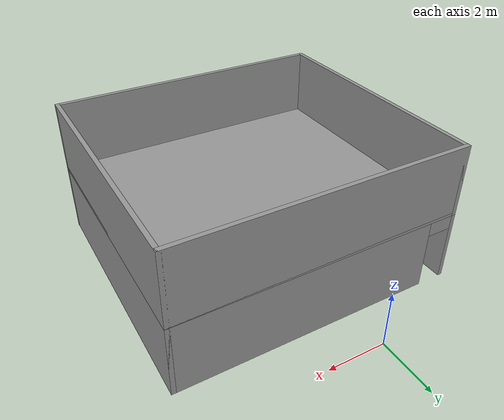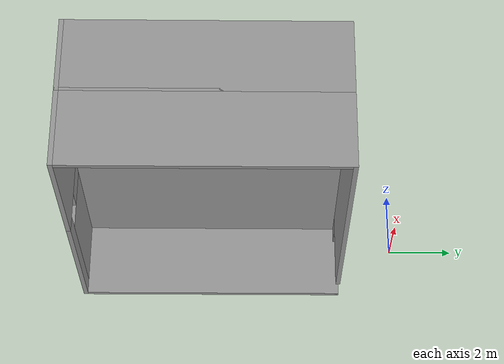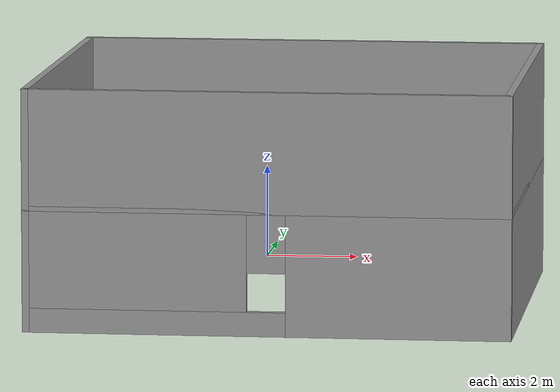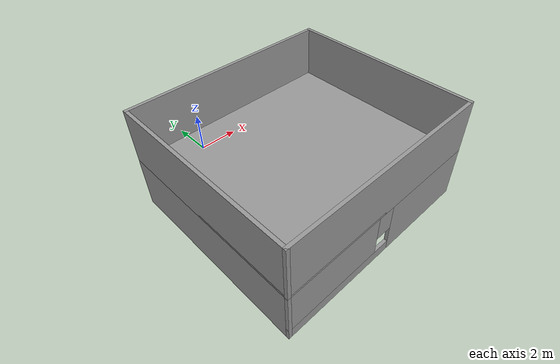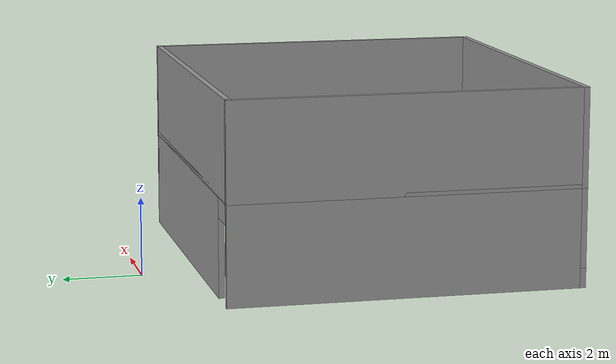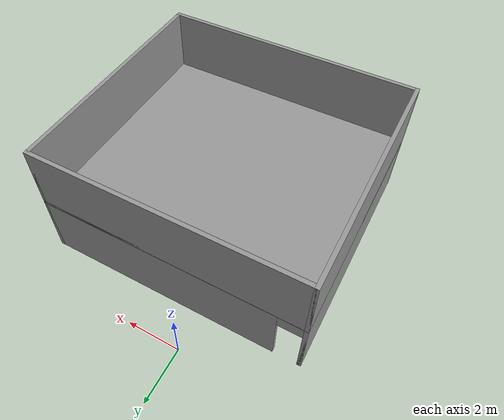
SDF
<sdf version='1.7'>
  <model name='Initial_2D'>
    <pose>1.215 -5.2225 0 0 -0 0</pose>
    <link name='Floor_0'>
      <collision name='Floor_0_Collision'>
        <geometry>
          <box>
            <size>10 9 0.1</size>
          </box>
        </geometry>
        <pose>0 0 0.05 0 -0 0</pose>
      </collision>
      <visual name='Floor_0_Visual'>
        <pose>0 0 0.05 0 -0 0</pose>
        <geometry>
          <box>
            <size>10 9 0.1</size>
          </box>
        </geometry>
        <material>
          <script>
            <uri>file://media/materials/scripts/gazebo.material</uri>
            <name>Gazebo/Grey</name>
          </script>
          <ambient>1 1 1 1</ambient>
        </material>
        <meta>
          <layer>1</layer>
        </meta>
      </visual>
      <pose>0 -0.7225 2.5 0 -0 0</pose>
    </link>
    <link name='Wall_0'>
      <pose>0 3.7025 0 0 -0 0</pose>
      <visual name='Wall_0_Visual_0'>
        <pose>-4.9375 0 1.25 0 -0 0</pose>
        <geometry>
          <box>
            <size>0.125 0.15 2.5</size>
          </box>
        </geometry>
        <material>
          <script>
            <uri>file://media/materials/scripts/gazebo.material</uri>
            <name>Gazebo/Grey</name>
          </script>
          <ambient>1 1 1 1</ambient>
        </material>
        <meta>
          <layer>0</layer>
        </meta>
      </visual>
      <collision name='Wall_0_Collision_0'>
        <geometry>
          <box>
            <size>0.125 0.15 2.5</size>
          </box>
        </geometry>
        <pose>-4.9375 0 1.25 0 -0 0</pose>
      </collision>
      <visual name='Wall_0_Visual_1'>
        <pose>0.5125 0 1.25 0 -0 0</pose>
        <geometry>
          <box>
            <size>8.975 0.15 2.5</size>
          </box>
        </geometry>
        <material>
          <script>
            <uri>file://media/materials/scripts/gazebo.material</uri>
            <name>Gazebo/Grey</name>
          </script>
          <ambient>1 1 1 1</ambient>
        </material>
        <meta>
          <layer>0</layer>
        </meta>
      </visual>
      <collision name='Wall_0_Collision_1'>
        <geometry>
          <box>
            <size>8.975 0.15 2.5</size>
          </box>
        </geometry>
        <pose>0.5125 0 1.25 0 -0 0</pose>
      </collision>
      <visual name='Wall_0_Visual_2'>
        <pose>-4.425 0 2.25 0 -0 0</pose>
        <geometry>
          <box>
            <size>0.9 0.15 0.5</size>
          </box>
        </geometry>
        <material>
          <script>
            <uri>file://media/materials/scripts/gazebo.material</uri>
            <name>Gazebo/Grey</name>
          </script>
          <ambient>1 1 1 1</ambient>
        </material>
        <meta>
          <layer>0</layer>
        </meta>
      </visual>
      <collision name='Wall_0_Collision_2'>
        <geometry>
          <box>
            <size>0.9 0.15 0.5</size>
          </box>
        </geometry>
        <pose>-4.425 0 2.25 0 -0 0</pose>
      </collision>
    </link>
    <link name='Wall_11'>
      <collision name='Wall_11_Collision'>
        <geometry>
          <box>
            <size>10 0.15 2.5</size>
          </box>
        </geometry>
        <pose>0 0 1.25 0 -0 0</pose>
      </collision>
      <visual name='Wall_11_Visual'>
        <pose>0 0 1.25 0 -0 0</pose>
        <geometry>
          <box>
            <size>10 0.15 2.5</size>
          </box>
        </geometry>
        <material>
          <script>
            <uri>file://media/materials/scripts/gazebo.material</uri>
            <name>Gazebo/Grey</name>
          </script>
          <ambient>1 1 1 1</ambient>
        </material>
        <meta>
          <layer>1</layer>
        </meta>
      </visual>
      <pose>0 3.7025 2.5 0 -0 0</pose>
    </link>
    <link name='Wall_12'>
      <collision name='Wall_12_Collision'>
        <geometry>
          <box>
            <size>9 0.15 2.5</size>
          </box>
        </geometry>
        <pose>0 0 1.25 0 -0 0</pose>
      </collision>
      <visual name='Wall_12_Visual'>
        <pose>0 0 1.25 0 -0 0</pose>
        <geometry>
          <box>
            <size>9 0.15 2.5</size>
          </box>
        </geometry>
        <material>
          <script>
            <uri>file://media/materials/scripts/gazebo.material</uri>
            <name>Gazebo/Grey</name>
          </script>
          <ambient>1 1 1 1</ambient>
        </material>
        <meta>
          <layer>1</layer>
        </meta>
      </visual>
      <pose>4.925 -0.7225 2.5 0 -0 -1.5708</pose>
    </link>
    <link name='Wall_13'>
      <collision name='Wall_13_Collision'>
        <geometry>
          <box>
            <size>10 0.15 2.5</size>
          </box>
        </geometry>
        <pose>0 0 1.25 0 -0 0</pose>
      </collision>
      <visual name='Wall_13_Visual'>
        <pose>0 0 1.25 0 -0 0</pose>
        <geometry>
          <box>
            <size>10 0.15 2.5</size>
          </box>
        </geometry>
        <material>
          <script>
            <uri>file://media/materials/scripts/gazebo.material</uri>
            <name>Gazebo/Grey</name>
          </script>
          <ambient>1 1 1 1</ambient>
        </material>
        <meta>
          <layer>1</layer>
        </meta>
      </visual>
      <pose>0 -5.1475 2.5 0 -0 3.14159</pose>
    </link>
    <link name='Wall_14'>
      <collision name='Wall_14_Collision'>
        <geometry>
          <box>
            <size>9 0.15 2.5</size>
          </box>
        </geometry>
        <pose>0 0 1.25 0 -0 0</pose>
      </collision>
      <visual name='Wall_14_Visual'>
        <pose>0 0 1.25 0 -0 0</pose>
        <geometry>
          <box>
            <size>9 0.15 2.5</size>
          </box>
        </geometry>
        <material>
          <script>
            <uri>file://media/materials/scripts/gazebo.material</uri>
            <name>Gazebo/Grey</name>
          </script>
          <ambient>1 1 1 1</ambient>
        </material>
        <meta>
          <layer>1</layer>
        </meta>
      </visual>
      <pose>-4.925 -0.7225 2.5 0 -0 1.5708</pose>
    </link>
    <link name='Wall_2'>
      <collision name='Wall_2_Collision'>
        <geometry>
          <box>
            <size>9 0.15 2.5</size>
          </box>
        </geometry>
        <pose>0 0 1.25 0 -0 0</pose>
      </collision>
      <visual name='Wall_2_Visual'>
        <pose>0 0 1.25 0 -0 0</pose>
        <geometry>
          <box>
            <size>9 0.15 2.5</size>
          </box>
        </geometry>
        <material>
          <script>
            <uri>file://media/materials/scripts/gazebo.material</uri>
            <name>Gazebo/Grey</name>
          </script>
          <ambient>1 1 1 1</ambient>
        </material>
        <meta>
          <layer>0</layer>
        </meta>
      </visual>
      <pose>4.925 -0.7225 0 0 -0 -1.5708</pose>
    </link>
    <link name='Wall_6'>
      <pose>0 -5.1475 0 0 -0 3.14159</pose>
      <visual name='Wall_6_Visual_0'>
        <pose>-2.7025 0 1.25 0 -0 0</pose>
        <geometry>
          <box>
            <size>4.595 0.15 2.5</size>
          </box>
        </geometry>
        <material>
          <script>
            <uri>file://media/materials/scripts/gazebo.material</uri>
            <name>Gazebo/Grey</name>
          </script>
          <ambient>1 1 1 1</ambient>
        </material>
        <meta>
          <layer>0</layer>
        </meta>
      </visual>
      <collision name='Wall_6_Collision_0'>
        <geometry>
          <box>
            <size>4.595 0.15 2.5</size>
          </box>
        </geometry>
        <pose>-2.7025 0 1.25 0 -0 0</pose>
      </collision>
      <visual name='Wall_6_Visual_1'>
        <pose>2.2975 0 0.25 0 -0 0</pose>
        <geometry>
          <box>
            <size>5.405 0.15 0.5</size>
          </box>
        </geometry>
        <material>
          <script>
            <uri>file://media/materials/scripts/gazebo.material</uri>
            <name>Gazebo/Grey</name>
          </script>
          <ambient>1 1 1 1</ambient>
        </material>
        <meta>
          <layer>0</layer>
        </meta>
      </visual>
      <collision name='Wall_6_Collision_1'>
        <geometry>
          <box>
            <size>5.405 0.15 0.5</size>
          </box>
        </geometry>
        <pose>2.2975 0 0.25 0 -0 0</pose>
      </collision>
      <visual name='Wall_6_Visual_2'>
        <pose>2.6975 0 1.5 0 -0 0</pose>
        <geometry>
          <box>
            <size>4.605 0.15 2</size>
          </box>
        </geometry>
        <material>
          <script>
            <uri>file://media/materials/scripts/gazebo.material</uri>
            <name>Gazebo/Grey</name>
          </script>
          <ambient>1 1 1 1</ambient>
        </material>
        <meta>
          <layer>0</layer>
        </meta>
      </visual>
      <collision name='Wall_6_Collision_2'>
        <geometry>
          <box>
            <size>4.605 0.15 2</size>
          </box>
        </geometry>
        <pose>2.6975 0 1.5 0 -0 0</pose>
      </collision>
      <visual name='Wall_6_Visual_3'>
        <pose>-0.005 0 1.9 0 -0 0</pose>
        <geometry>
          <box>
            <size>0.8 0.15 1.2</size>
          </box>
        </geometry>
        <material>
          <script>
            <uri>file://media/materials/scripts/gazebo.material</uri>
            <name>Gazebo/Grey</name>
          </script>
          <ambient>1 1 1 1</ambient>
        </material>
        <meta>
          <layer>0</layer>
        </meta>
      </visual>
      <collision name='Wall_6_Collision_3'>
        <geometry>
          <box>
            <size>0.8 0.15 1.2</size>
          </box>
        </geometry>
        <pose>-0.005 0 1.9 0 -0 0</pose>
      </collision>
    </link>
    <link name='Wall_7'>
      <collision name='Wall_7_Collision'>
        <geometry>
          <box>
            <size>9 0.15 2.5</size>
          </box>
        </geometry>
        <pose>0 0 1.25 0 -0 0</pose>
      </collision>
      <visual name='Wall_7_Visual'>
        <pose>0 0 1.25 0 -0 0</pose>
        <geometry>
          <box>
            <size>9 0.15 2.5</size>
          </box>
        </geometry>
        <material>
          <script>
            <uri>file://media/materials/scripts/gazebo.material</uri>
            <name>Gazebo/Grey</name>
          </script>
          <ambient>1 1 1 1</ambient>
        </material>
        <meta>
          <layer>0</layer>
        </meta>
      </visual>
      <pose>-4.925 -0.7225 0 0 -0 1.5708</pose>
    </link>
    <static>1</static>
  </model>
</sdf>
